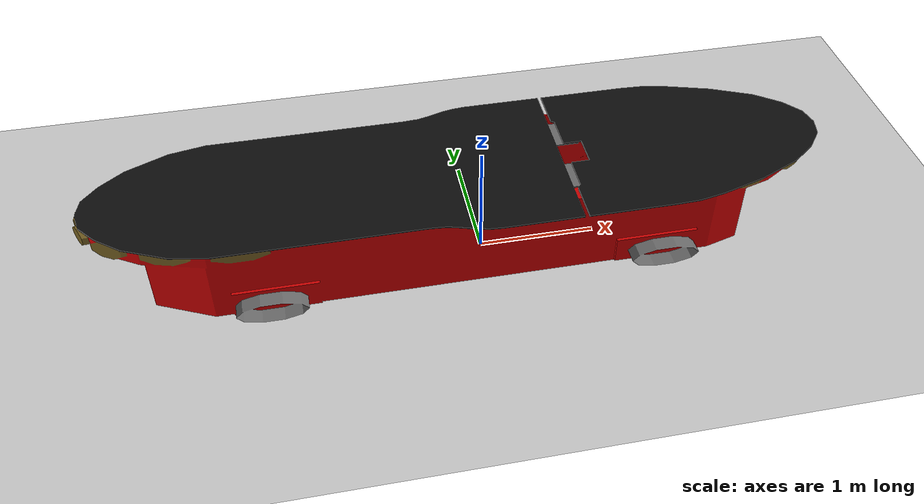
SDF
<?xml version="1.0"?>

<sdf version="1.6">
  <world name="default">

    <include>
      <uri>model://ground_plane</uri>
    </include>

    <include>
      <uri>model://sun</uri>
    </include>

    <model name='vehicle'>
      <pose>0 0 0.325 0 -0 0</pose>

      <link name='chassis'>
        <pose>-0.2 -0 0.2 0 -0 0</pose>
        <inertial>
          <mass>1.14395</mass>
          <inertia>
            <ixx>0.126164</ixx>
            <ixy>0</ixy>
            <ixz>0</ixz>
            <iyy>0.416519</iyy>
            <iyz>0</iyz>
            <izz>0.481014</izz>
          </inertia>
        </inertial>
        <visual name='visual'>
          <geometry>
            <mesh>
              <uri>model://pioneer3at/meshes/chassis.dae</uri>
              <scale>12 4 4</scale>
              <pose>0 0 7</pose>
            </mesh>
          </geometry>
        </visual>
        <collision name='collision'>
          <geometry>
            <box>
              <size>1.01142 1 0.568726</size>
            </box>
          </geometry>
        </collision>
      </link>

    </model>

  </world>
</sdf>
